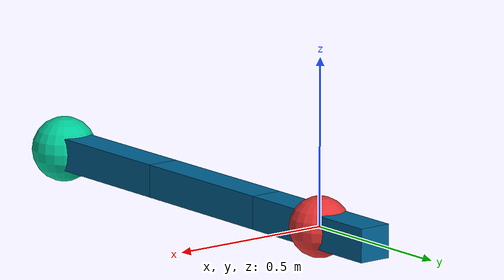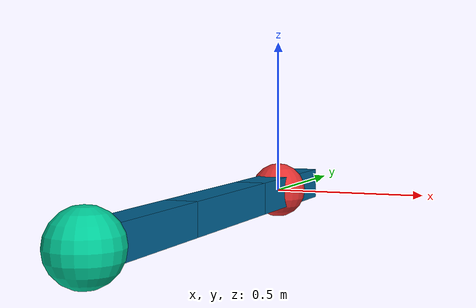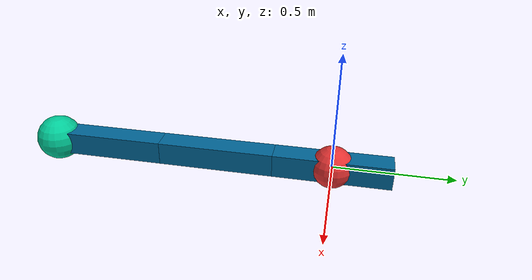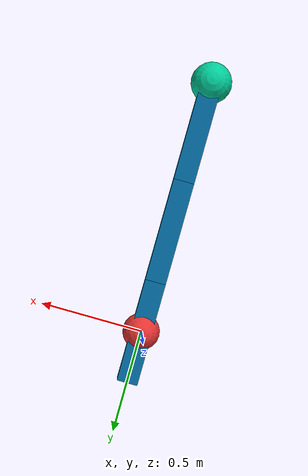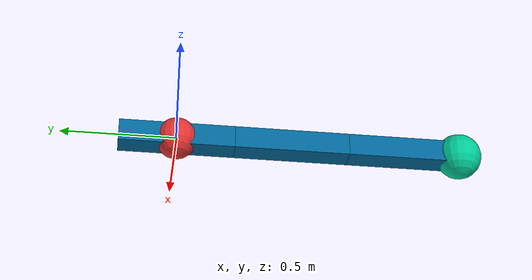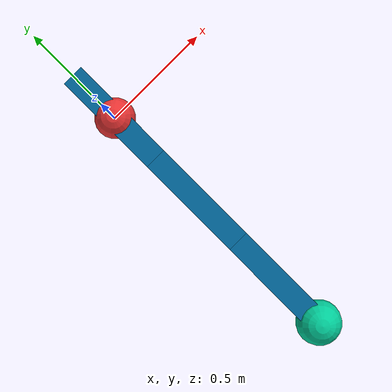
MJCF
<mujoco model="reacher">
	<compiler angle="radian" inertiafromgeom="true"/>
	<default>
		<joint armature="0" damping="2" limited="true"/>
		<geom contype="0" friction="1 0.1 0.1" rgba="0.7 0.7 0 1"/>
	</default>
	<option gravity="0 0 0" integrator="RK4" timestep="0.002"/>
	<worldbody>
		<!-- Arm -->
		<body name="body0" pos="0 0 0">
			<geom contype="0" pos="0 0 0" mass="1" name="link0" rgba="0.0 0.4 0.6 1" size="0.05 0.25 0.05" type="box"/>
			<joint axis="0 0 1" limited="true" range="-3.14 3.14" name="joint0_f" pos="0 0.25 0" type="hinge"/>
			<joint axis="1 0 0" limited="true" range="-3.14 3.14" name="joint0_h" pos="0 0.25 0" type="hinge"/>
			<body name="body1" pos="0 -0.5 0">
				<joint axis="0 0 1" limited="true" range="-3.14 3.14" name="joint1" pos="0 0.25 0" type="hinge"/>
				<geom contype="0" pos="0 0 0" mass="1" name="link1" rgba="0.0 0.4 0.6 1" size="0.05 0.25 0.05" type="box"/>
                <body name="body2" pos="0 -0.5 0">
                    <geom contype="0" pos="0 0 0" mass="1" name="link2" rgba="0.0 0.4 0.6 1" size="0.05 0.25 0.05" type="box"/>
			        <joint axis="0 0 1" limited="true" range="-3.14 3.14" name="joint2_f" pos="0 0.25 0" type="hinge"/>
			        <joint axis="1 0 0" limited="true" range="-3.14 3.14" name="joint2_h" pos="0 0.25 0" type="hinge"/>
				    <body name="fingertip" pos="0 -0.25 0">
					    <geom contype="0" name="fingertip" pos="0 0 0" mass="0" rgba="0.0 0.8 0.6 1" size=".1" type="sphere"/>
                    </body>
				</body>
			</body>
		</body>
		<!-- Target -->
		<body name="target" pos="0 0 0">
			<joint armature="0" axis="1 0 0" damping="0" limited="false" name="target_x" pos="0 0 0" stiffness="0" type="slide"/>
			<joint armature="0" axis="0 1 0" damping="0" limited="false" name="target_y" pos="0 0 0" stiffness="0" type="slide"/>
            <joint armature="0" axis="0 0 1" damping="0" limited="false" name="target_z" pos="0 0 0" stiffness="0" type="slide"/>
			<geom conaffinity="0" contype="0" name="target" pos="0 0 0" rgba="0.9 0.2 0.2 1" size=".09" type="sphere"/>
		</body>
	</worldbody>
	<actuator>
		<motor ctrllimited="true" ctrlrange="-1.0 1.0" gear="10.0" joint="joint0_f"/>
		<motor ctrllimited="true" ctrlrange="-1.0 1.0" gear="10.0" joint="joint0_h"/>
        <motor ctrllimited="true" ctrlrange="-1.0 1.0" gear="10.0" joint="joint1"/>
		<motor ctrllimited="true" ctrlrange="-1.0 1.0" gear="10.0" joint="joint2_f"/>
        <motor ctrllimited="true" ctrlrange="-1.0 1.0" gear="10.0" joint="joint2_h"/>
	</actuator>
</mujoco>
